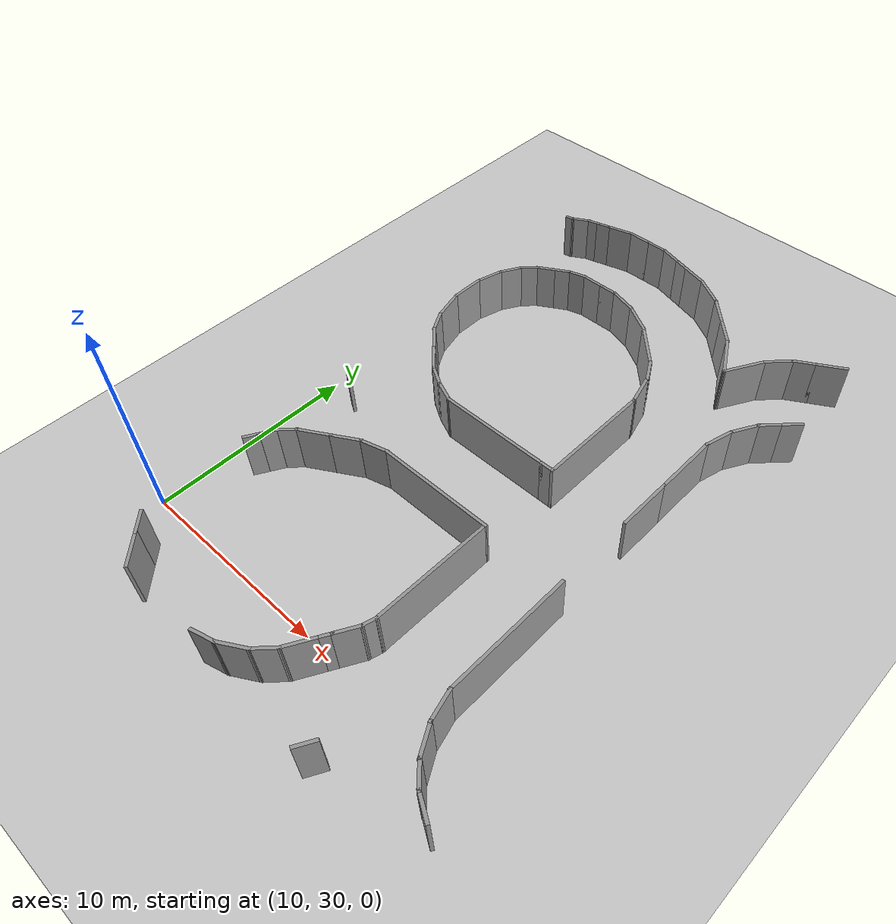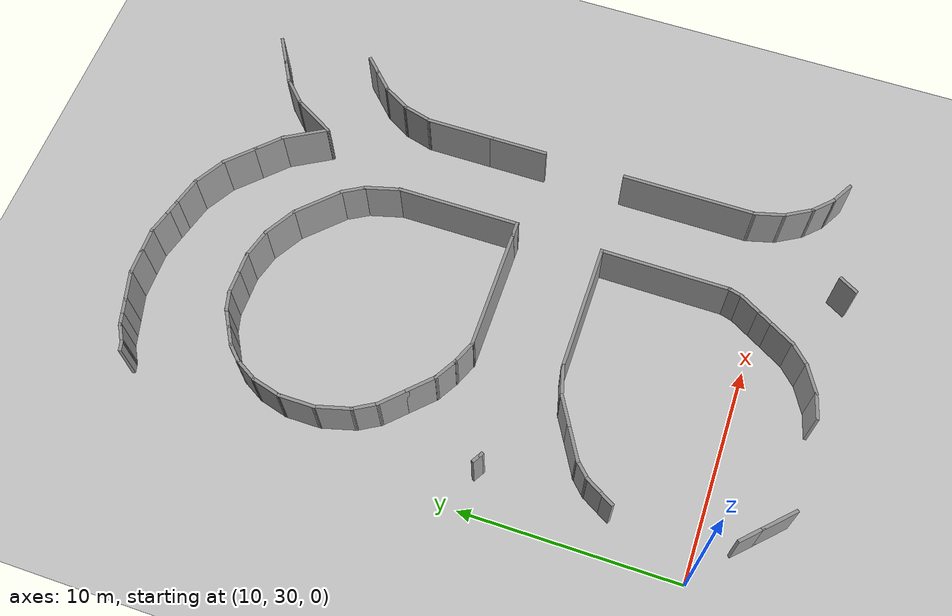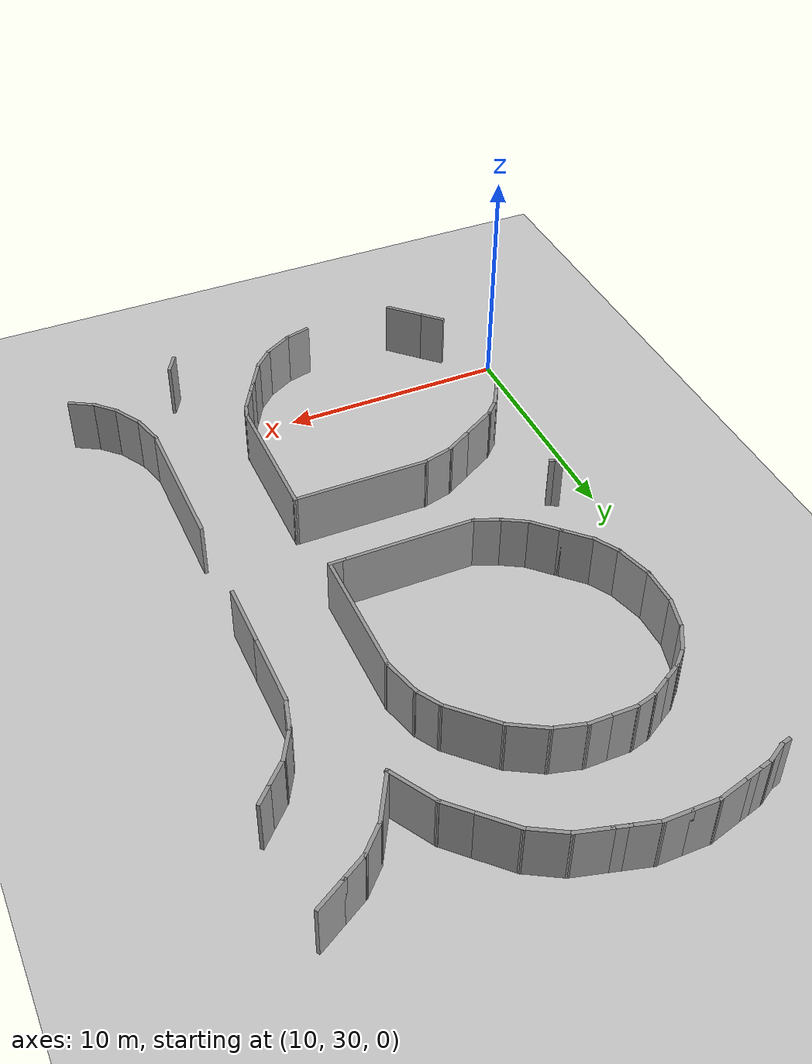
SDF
<sdf version="1.7">
 <world name="default">
  <model name="ground_plane">
   <static>1</static>
   <link name="link">
    <collision name="collision">
     <geometry><plane><normal>0 0 1</normal><size>100 100</size></plane></geometry>
     <surface><friction><ode><mu>100</mu><mu2>50</mu2></ode></friction></surface>
    </collision>
    <visual name="visual">
     <cast_shadows>0</cast_shadows>
     <geometry><plane><normal>0 0 1</normal><size>100 100</size></plane></geometry>
     <material>
      <script><uri>file://media/materials/scripts/gazebo.material</uri><name>Gazebo/Grey</name></script>
     </material>
    </visual>
   </link>
  </model>
  <model name="map4-otto">
   <pose>24.785 39.2572 0 0 -0 0</pose>
   <link name="Wall_0">
    <collision name="Wall_0_Collision">
     <geometry><box><size>5.75 0.15 2.5</size></box></geometry>
     <pose>0 0 1.25 0 -0 0</pose>
    </collision>
    <visual name="Wall_0_Visual">
     <pose>0 0 1.25 0 -0 0</pose>
     <geometry><box><size>5.75 0.15 2.5</size></box></geometry>
     <material>
      <script><uri>file://media/materials/scripts/gazebo.material</uri><name>Gazebo/Grey</name></script>
      <ambient>1 1 1 1</ambient>
     </material>
     <meta><layer>0</layer></meta>
    </visual>
    <pose>-5.42936 2.24258 0 0 -0 0</pose>
   </link>
   <link name="Wall_1">
    <collision name="Wall_1_Collision">
     <geometry><box><size>0.75 0.15 2.5</size></box></geometry>
     <pose>0 0 1.25 0 -0 0</pose>
    </collision>
    <visual name="Wall_1_Visual">
     <pose>0 0 1.25 0 -0 0</pose>
     <geometry><box><size>0.75 0.15 2.5</size></box></geometry>
     <material>
      <script><uri>file://media/materials/scripts/gazebo.material</uri><name>Gazebo/Grey</name></script>
      <ambient>1 1 1 1</ambient>
     </material>
     <meta><layer>0</layer></meta>
    </visual>
    <pose>-2.32936 2.24258 0 0 -0 0</pose>
   </link>
   <link name="Wall_10">
    <collision name="Wall_10_Collision">
     <geometry><box><size>1.5 0.15 2.5</size></box></geometry>
     <pose>0 0 1.25 0 -0 0</pose>
    </collision>
    <visual name="Wall_10_Visual">
     <pose>0 0 1.25 0 -0 0</pose>
     <geometry><box><size>1.5 0.15 2.5</size></box></geometry>
     <material>
      <script><uri>file://media/materials/scripts/gazebo.material</uri><name>Gazebo/Grey</name></script>
      <ambient>1 1 1 1</ambient>
     </material>
     <meta><layer>0</layer></meta>
    </visual>
    <pose>-6.69281 12.9771 0 0 -0 2.87979</pose>
   </link>
   <link name="Wall_104">
    <collision name="Wall_104_Collision">
     <geometry><box><size>2.25 0.15 2.5</size></box></geometry>
     <pose>0 0 1.25 0 -0 0</pose>
    </collision>
    <visual name="Wall_104_Visual">
     <pose>0 0 1.25 0 -0 0</pose>
     <geometry><box><size>2.25 0.15 2.5</size></box></geometry>
     <material>
      <script><uri>file://media/materials/scripts/gazebo.material</uri><name>Gazebo/Grey</name></script>
      <ambient>1 1 1 1</ambient>
     </material>
     <meta><layer>0</layer></meta>
    </visual>
    <pose>-0.63122 13.0957 0 0 -0 2.0944</pose>
   </link>
   <link name="Wall_105">
    <collision name="Wall_105_Collision">
     <geometry><box><size>1.5 0.15 2.5</size></box></geometry>
     <pose>0 0 1.25 0 -0 0</pose>
    </collision>
    <visual name="Wall_105_Visual">
     <pose>0 0 1.25 0 -0 0</pose>
     <geometry><box><size>1.5 0.15 2.5</size></box></geometry>
     <material>
      <script><uri>file://media/materials/scripts/gazebo.material</uri><name>Gazebo/Grey</name></script>
      <ambient>1 1 1 1</ambient>
     </material>
     <meta><layer>0</layer></meta>
    </visual>
    <pose>-1.63352 14.4823 0 0 -0 2.35619</pose>
   </link>
   <link name="Wall_106">
    <collision name="Wall_106_Collision">
     <geometry><box><size>1.75 0.15 2.5</size></box></geometry>
     <pose>0 0 1.25 0 -0 0</pose>
    </collision>
    <visual name="Wall_106_Visual">
     <pose>0 0 1.25 0 -0 0</pose>
     <geometry><box><size>1.75 0.15 2.5</size></box></geometry>
     <material>
      <script><uri>file://media/materials/scripts/gazebo.material</uri><name>Gazebo/Grey</name></script>
      <ambient>1 1 1 1</ambient>
     </material>
     <meta><layer>0</layer></meta>
    </visual>
    <pose>-2.6765 15.5253 0 0 -0 2.35619</pose>
   </link>
   <link name="Wall_107">
    <collision name="Wall_107_Collision">
     <geometry><box><size>1.75 0.15 2.5</size></box></geometry>
     <pose>0 0 1.25 0 -0 0</pose>
    </collision>
    <visual name="Wall_107_Visual">
     <pose>0 0 1.25 0 -0 0</pose>
     <geometry><box><size>1.75 0.15 2.5</size></box></geometry>
     <material>
      <script><uri>file://media/materials/scripts/gazebo.material</uri><name>Gazebo/Grey</name></script>
      <ambient>1 1 1 1</ambient>
     </material>
     <meta><layer>0</layer></meta>
    </visual>
    <pose>-3.93501 16.491 0 0 -0 2.61799</pose>
   </link>
   <link name="Wall_108">
    <collision name="Wall_108_Collision">
     <geometry><box><size>1.5 0.15 2.5</size></box></geometry>
     <pose>0 0 1.25 0 -0 0</pose>
    </collision>
    <visual name="Wall_108_Visual">
     <pose>0 0 1.25 0 -0 0</pose>
     <geometry><box><size>1.5 0.15 2.5</size></box></geometry>
     <material>
      <script><uri>file://media/materials/scripts/gazebo.material</uri><name>Gazebo/Grey</name></script>
      <ambient>1 1 1 1</ambient>
     </material>
     <meta><layer>0</layer></meta>
    </visual>
    <pose>-5.27983 17.0657 0 0 -0 2.87979</pose>
   </link>
   <link name="Wall_109">
    <collision name="Wall_109_Collision">
     <geometry><box><size>0.75 0.15 2.5</size></box></geometry>
     <pose>0 0 1.25 0 -0 0</pose>
    </collision>
    <visual name="Wall_109_Visual">
     <pose>0 0 1.25 0 -0 0</pose>
     <geometry><box><size>0.75 0.15 2.5</size></box></geometry>
     <material>
      <script><uri>file://media/materials/scripts/gazebo.material</uri><name>Gazebo/Grey</name></script>
      <ambient>1 1 1 1</ambient>
     </material>
     <meta><layer>0</layer></meta>
    </visual>
    <pose>-6.2216 17.318 0 0 -0 2.87979</pose>
   </link>
   <link name="Wall_11">
    <collision name="Wall_11_Collision">
     <geometry><box><size>1 0.15 2.5</size></box></geometry>
     <pose>0 0 1.25 0 -0 0</pose>
    </collision>
    <visual name="Wall_11_Visual">
     <pose>0 0 1.25 0 -0 0</pose>
     <geometry><box><size>1 0.15 2.5</size></box></geometry>
     <material>
      <script><uri>file://media/materials/scripts/gazebo.material</uri><name>Gazebo/Grey</name></script>
      <ambient>1 1 1 1</ambient>
     </material>
     <meta><layer>0</layer></meta>
    </visual>
    <pose>-7.76981 13.1518 0 0 -0 3.14159</pose>
   </link>
   <link name="Wall_110">
    <collision name="Wall_110_Collision">
     <geometry><box><size>1.25 0.15 2.5</size></box></geometry>
     <pose>0 0 1.25 0 -0 0</pose>
    </collision>
    <visual name="Wall_110_Visual">
     <pose>0 0 1.25 0 -0 0</pose>
     <geometry><box><size>1.25 0.15 2.5</size></box></geometry>
     <material>
      <script><uri>file://media/materials/scripts/gazebo.material</uri><name>Gazebo/Grey</name></script>
      <ambient>1 1 1 1</ambient>
     </material>
     <meta><layer>0</layer></meta>
    </visual>
    <pose>-7.04264 17.538 0 0 -0 2.87979</pose>
   </link>
   <link name="Wall_111">
    <collision name="Wall_111_Collision">
     <geometry><box><size>1.25 0.15 2.5</size></box></geometry>
     <pose>0 0 1.25 0 -0 0</pose>
    </collision>
    <visual name="Wall_111_Visual">
     <pose>0 0 1.25 0 -0 0</pose>
     <geometry><box><size>1.25 0.15 2.5</size></box></geometry>
     <material>
      <script><uri>file://media/materials/scripts/gazebo.material</uri><name>Gazebo/Grey</name></script>
      <ambient>1 1 1 1</ambient>
     </material>
     <meta><layer>0</layer></meta>
    </visual>
    <pose>-8.1239 17.6804 0 0 -0 3.14159</pose>
   </link>
   <link name="Wall_112">
    <collision name="Wall_112_Collision">
     <geometry><box><size>1.25 0.15 2.5</size></box></geometry>
     <pose>0 0 1.25 0 -0 0</pose>
    </collision>
    <visual name="Wall_112_Visual">
     <pose>0 0 1.25 0 -0 0</pose>
     <geometry><box><size>1.25 0.15 2.5</size></box></geometry>
     <material>
      <script><uri>file://media/materials/scripts/gazebo.material</uri><name>Gazebo/Grey</name></script>
      <ambient>1 1 1 1</ambient>
     </material>
     <meta><layer>0</layer></meta>
    </visual>
    <pose>-9.2239 17.6804 0 0 -0 3.14159</pose>
   </link>
   <link name="Wall_113">
    <collision name="Wall_113_Collision">
     <geometry><box><size>1.5 0.15 2.5</size></box></geometry>
     <pose>0 0 1.25 0 -0 0</pose>
    </collision>
    <visual name="Wall_113_Visual">
     <pose>0 0 1.25 0 -0 0</pose>
     <geometry><box><size>1.5 0.15 2.5</size></box></geometry>
     <material>
      <script><uri>file://media/materials/scripts/gazebo.material</uri><name>Gazebo/Grey</name></script>
      <ambient>1 1 1 1</ambient>
     </material>
     <meta><layer>0</layer></meta>
    </visual>
    <pose>-10.4259 17.5057 0 0 -0 -2.87979</pose>
   </link>
   <link name="Wall_114">
    <collision name="Wall_114_Collision">
     <geometry><box><size>0.75 0.15 2.5</size></box></geometry>
     <pose>0 0 1.25 0 -0 0</pose>
    </collision>
    <visual name="Wall_114_Visual">
     <pose>0 0 1.25 0 -0 0</pose>
     <geometry><box><size>0.75 0.15 2.5</size></box></geometry>
     <material>
      <script><uri>file://media/materials/scripts/gazebo.material</uri><name>Gazebo/Grey</name></script>
      <ambient>1 1 1 1</ambient>
     </material>
     <meta><layer>0</layer></meta>
    </visual>
    <pose>-11.3677 17.2533 0 0 -0 -2.87979</pose>
   </link>
   <link name="Wall_115">
    <collision name="Wall_115_Collision">
     <geometry><box><size>0.75 0.15 2.5</size></box></geometry>
     <pose>0 0 1.25 0 -0 0</pose>
    </collision>
    <visual name="Wall_115_Visual">
     <pose>0 0 1.25 0 -0 0</pose>
     <geometry><box><size>0.75 0.15 2.5</size></box></geometry>
     <material>
      <script><uri>file://media/materials/scripts/gazebo.material</uri><name>Gazebo/Grey</name></script>
      <ambient>1 1 1 1</ambient>
     </material>
     <meta><layer>0</layer></meta>
    </visual>
    <pose>-11.9472 17.0981 0 0 -0 -2.87979</pose>
   </link>
   <link name="Wall_116">
    <collision name="Wall_116_Collision">
     <geometry><box><size>1 0.15 2.5</size></box></geometry>
     <pose>0 0 1.25 0 -0 0</pose>
    </collision>
    <visual name="Wall_116_Visual">
     <pose>0 0 1.25 0 -0 0</pose>
     <geometry><box><size>1 0.15 2.5</size></box></geometry>
     <material>
      <script><uri>file://media/materials/scripts/gazebo.material</uri><name>Gazebo/Grey</name></script>
      <ambient>1 1 1 1</ambient>
     </material>
     <meta><layer>0</layer></meta>
    </visual>
    <pose>-12.6051 16.8079 0 0 -0 -2.61799</pose>
   </link>
   <link name="Wall_117">
    <collision name="Wall_117_Collision">
     <geometry><box><size>0.5 0.15 2.5</size></box></geometry>
     <pose>0 0 1.25 0 -0 0</pose>
    </collision>
    <visual name="Wall_117_Visual">
     <pose>0 0 1.25 0 -0 0</pose>
     <geometry><box><size>0.5 0.15 2.5</size></box></geometry>
     <material>
      <script><uri>file://media/materials/scripts/gazebo.material</uri><name>Gazebo/Grey</name></script>
      <ambient>1 1 1 1</ambient>
     </material>
     <meta><layer>0</layer></meta>
    </visual>
    <pose>-13.1422 16.5501 0 0 -0 -2.87979</pose>
   </link>
   <link name="Wall_12">
    <collision name="Wall_12_Collision">
     <geometry><box><size>1.25 0.15 2.5</size></box></geometry>
     <pose>0 0 1.25 0 -0 0</pose>
    </collision>
    <visual name="Wall_12_Visual">
     <pose>0 0 1.25 0 -0 0</pose>
     <geometry><box><size>1.25 0.15 2.5</size></box></geometry>
     <material>
      <script><uri>file://media/materials/scripts/gazebo.material</uri><name>Gazebo/Grey</name></script>
      <ambient>1 1 1 1</ambient>
     </material>
     <meta><layer>0</layer></meta>
    </visual>
    <pose>-8.74481 13.1518 0 0 -0 3.14159</pose>
   </link>
   <link name="Wall_13">
    <collision name="Wall_13_Collision">
     <geometry><box><size>1 0.15 2.5</size></box></geometry>
     <pose>0 0 1.25 0 -0 0</pose>
    </collision>
    <visual name="Wall_13_Visual">
     <pose>0 0 1.25 0 -0 0</pose>
     <geometry><box><size>1 0.15 2.5</size></box></geometry>
     <material>
      <script><uri>file://media/materials/scripts/gazebo.material</uri><name>Gazebo/Grey</name></script>
      <ambient>1 1 1 1</ambient>
     </material>
     <meta><layer>0</layer></meta>
    </visual>
    <pose>-9.70533 13.0418 0 0 -0 -2.87979</pose>
   </link>
   <link name="Wall_14">
    <collision name="Wall_14_Collision">
     <geometry><box><size>1 0.15 2.5</size></box></geometry>
     <pose>0 0 1.25 0 -0 0</pose>
    </collision>
    <visual name="Wall_14_Visual">
     <pose>0 0 1.25 0 -0 0</pose>
     <geometry><box><size>1 0.15 2.5</size></box></geometry>
     <material>
      <script><uri>file://media/materials/scripts/gazebo.material</uri><name>Gazebo/Grey</name></script>
      <ambient>1 1 1 1</ambient>
     </material>
     <meta><layer>0</layer></meta>
    </visual>
    <pose>-10.4839 12.7193 0 0 -0 -2.61799</pose>
   </link>
   <link name="Wall_141">
    <collision name="Wall_141_Collision">
     <geometry><box><size>0.5 0.15 2.5</size></box></geometry>
     <pose>0 0 1.25 0 -0 0</pose>
    </collision>
    <visual name="Wall_141_Visual">
     <pose>0 0 1.25 0 -0 0</pose>
     <geometry><box><size>0.5 0.15 2.5</size></box></geometry>
     <material>
      <script><uri>file://media/materials/scripts/gazebo.material</uri><name>Gazebo/Grey</name></script>
      <ambient>1 1 1 1</ambient>
     </material>
     <meta><layer>0</layer></meta>
    </visual>
    <pose>-13.05 0.392899 0 0 -0 -0.523599</pose>
   </link>
   <link name="Wall_142">
    <collision name="Wall_142_Collision">
     <geometry><box><size>0.25 0.15 2.5</size></box></geometry>
     <pose>0 0 1.25 0 -0 0</pose>
    </collision>
    <visual name="Wall_142_Visual">
     <pose>0 0 1.25 0 -0 0</pose>
     <geometry><box><size>0.25 0.15 2.5</size></box></geometry>
     <material>
      <script><uri>file://media/materials/scripts/gazebo.material</uri><name>Gazebo/Grey</name></script>
      <ambient>1 1 1 1</ambient>
     </material>
     <meta><layer>0</layer></meta>
    </visual>
    <pose>-12.8551 0.280399 0 0 -0 -0.523599</pose>
   </link>
   <link name="Wall_15">
    <collision name="Wall_15_Collision">
     <geometry><box><size>1 0.15 2.5</size></box></geometry>
     <pose>0 0 1.25 0 -0 0</pose>
    </collision>
    <visual name="Wall_15_Visual">
     <pose>0 0 1.25 0 -0 0</pose>
     <geometry><box><size>1 0.15 2.5</size></box></geometry>
     <material>
      <script><uri>file://media/materials/scripts/gazebo.material</uri><name>Gazebo/Grey</name></script>
      <ambient>1 1 1 1</ambient>
     </material>
     <meta><layer>0</layer></meta>
    </visual>
    <pose>-11.22 12.2943 0 0 -0 -2.61799</pose>
   </link>
   <link name="Wall_16">
    <collision name="Wall_16_Collision">
     <geometry><box><size>1 0.15 2.5</size></box></geometry>
     <pose>0 0 1.25 0 -0 0</pose>
    </collision>
    <visual name="Wall_16_Visual">
     <pose>0 0 1.25 0 -0 0</pose>
     <geometry><box><size>1 0.15 2.5</size></box></geometry>
     <material>
      <script><uri>file://media/materials/scripts/gazebo.material</uri><name>Gazebo/Grey</name></script>
      <ambient>1 1 1 1</ambient>
     </material>
     <meta><layer>0</layer></meta>
    </visual>
    <pose>-11.8886 11.7813 0 0 -0 -2.35619</pose>
   </link>
   <link name="Wall_17">
    <collision name="Wall_17_Collision">
     <geometry><box><size>1.25 0.15 2.5</size></box></geometry>
     <pose>0 0 1.25 0 -0 0</pose>
    </collision>
    <visual name="Wall_17_Visual">
     <pose>0 0 1.25 0 -0 0</pose>
     <geometry><box><size>1.25 0.15 2.5</size></box></geometry>
     <material>
      <script><uri>file://media/materials/scripts/gazebo.material</uri><name>Gazebo/Grey</name></script>
      <ambient>1 1 1 1</ambient>
     </material>
     <meta><layer>0</layer></meta>
    </visual>
    <pose>-12.4641 11.0044 0 0 -0 -2.0944</pose>
   </link>
   <link name="Wall_178">
    <collision name="Wall_178_Collision">
     <geometry><box><size>1 0.15 2.5</size></box></geometry>
     <pose>0 0 1.25 0 -0 0</pose>
    </collision>
    <visual name="Wall_178_Visual">
     <pose>0 0 1.25 0 -0 0</pose>
     <geometry><box><size>1 0.15 2.5</size></box></geometry>
     <material>
      <script><uri>file://media/materials/scripts/gazebo.material</uri><name>Gazebo/Grey</name></script>
      <ambient>1 1 1 1</ambient>
     </material>
     <meta><layer>0</layer></meta>
    </visual>
    <pose>-0.306298 -12.5487 0 0 -0 1.0472</pose>
   </link>
   <link name="Wall_18">
    <collision name="Wall_18_Collision">
     <geometry><box><size>1.5 0.15 2.5</size></box></geometry>
     <pose>0 0 1.25 0 -0 0</pose>
    </collision>
    <visual name="Wall_18_Visual">
     <pose>0 0 1.25 0 -0 0</pose>
     <geometry><box><size>1.5 0.15 2.5</size></box></geometry>
     <material>
      <script><uri>file://media/materials/scripts/gazebo.material</uri><name>Gazebo/Grey</name></script>
      <ambient>1 1 1 1</ambient>
     </material>
     <meta><layer>0</layer></meta>
    </visual>
    <pose>-12.9138 9.87613 0 0 -0 -1.8326</pose>
   </link>
   <link name="Wall_19">
    <collision name="Wall_19_Collision">
     <geometry><box><size>1.75 0.15 2.5</size></box></geometry>
     <pose>0 0 1.25 0 -0 0</pose>
    </collision>
    <visual name="Wall_19_Visual">
     <pose>0 0 1.25 0 -0 0</pose>
     <geometry><box><size>1.75 0.15 2.5</size></box></geometry>
     <material>
      <script><uri>file://media/materials/scripts/gazebo.material</uri><name>Gazebo/Grey</name></script>
      <ambient>1 1 1 1</ambient>
     </material>
     <meta><layer>0</layer></meta>
    </visual>
    <pose>-13.0885 8.42413 0 0 -0 -1.5708</pose>
   </link>
   <link name="Wall_20">
    <collision name="Wall_20_Collision">
     <geometry><box><size>1.75 0.15 2.5</size></box></geometry>
     <pose>0 0 1.25 0 -0 0</pose>
    </collision>
    <visual name="Wall_20_Visual">
     <pose>0 0 1.25 0 -0 0</pose>
     <geometry><box><size>1.75 0.15 2.5</size></box></geometry>
     <material>
      <script><uri>file://media/materials/scripts/gazebo.material</uri><name>Gazebo/Grey</name></script>
      <ambient>1 1 1 1</ambient>
     </material>
     <meta><layer>0</layer></meta>
    </visual>
    <pose>-12.8815 6.85139 0 0 -0 -1.309</pose>
   </link>
   <link name="Wall_21">
    <collision name="Wall_21_Collision">
     <geometry><box><size>1.25 0.15 2.5</size></box></geometry>
     <pose>0 0 1.25 0 -0 0</pose>
    </collision>
    <visual name="Wall_21_Visual">
     <pose>0 0 1.25 0 -0 0</pose>
     <geometry><box><size>1.25 0.15 2.5</size></box></geometry>
     <material>
      <script><uri>file://media/materials/scripts/gazebo.material</uri><name>Gazebo/Grey</name></script>
      <ambient>1 1 1 1</ambient>
     </material>
     <meta><layer>0</layer></meta>
    </visual>
    <pose>-12.3994 5.60234 0 0 -0 -1.0472</pose>
   </link>
   <link name="Wall_22">
    <collision name="Wall_22_Collision">
     <geometry><box><size>1.5 0.15 2.5</size></box></geometry>
     <pose>0 0 1.25 0 -0 0</pose>
    </collision>
    <visual name="Wall_22_Visual">
     <pose>0 0 1.25 0 -0 0</pose>
     <geometry><box><size>1.5 0.15 2.5</size></box></geometry>
     <material>
      <script><uri>file://media/materials/scripts/gazebo.material</uri><name>Gazebo/Grey</name></script>
      <ambient>1 1 1 1</ambient>
     </material>
     <meta><layer>0</layer></meta>
    </visual>
    <pose>-11.6471 4.64873 0 0 -0 -0.785398</pose>
   </link>
   <link name="Wall_223">
    <collision name="Wall_223_Collision">
     <geometry><box><size>2.25 0.15 2.5</size></box></geometry>
     <pose>0 0 1.25 0 -0 0</pose>
    </collision>
    <visual name="Wall_223_Visual">
     <pose>0 0 1.25 0 -0 0</pose>
     <geometry><box><size>2.25 0.15 2.5</size></box></geometry>
     <material>
      <script><uri>file://media/materials/scripts/gazebo.material</uri><name>Gazebo/Grey</name></script>
      <ambient>1 1 1 1</ambient>
     </material>
     <meta><layer>0</layer></meta>
    </visual>
    <pose>0.41878 13.0957 0 0 -0 1.0472</pose>
   </link>
   <link name="Wall_224">
    <collision name="Wall_224_Collision">
     <geometry><box><size>1.5 0.15 2.5</size></box></geometry>
     <pose>0 0 1.25 0 -0 0</pose>
    </collision>
    <visual name="Wall_224_Visual">
     <pose>0 0 1.25 0 -0 0</pose>
     <geometry><box><size>1.5 0.15 2.5</size></box></geometry>
     <material>
      <script><uri>file://media/materials/scripts/gazebo.material</uri><name>Gazebo/Grey</name></script>
      <ambient>1 1 1 1</ambient>
     </material>
     <meta><layer>0</layer></meta>
    </visual>
    <pose>1.42108 14.4823 0 0 -0 0.785398</pose>
   </link>
   <link name="Wall_225">
    <collision name="Wall_225_Collision">
     <geometry><box><size>1.25 0.15 2.5</size></box></geometry>
     <pose>0 0 1.25 0 -0 0</pose>
    </collision>
    <visual name="Wall_225_Visual">
     <pose>0 0 1.25 0 -0 0</pose>
     <geometry><box><size>1.25 0.15 2.5</size></box></geometry>
     <material>
      <script><uri>file://media/materials/scripts/gazebo.material</uri><name>Gazebo/Grey</name></script>
      <ambient>1 1 1 1</ambient>
     </material>
     <meta><layer>0</layer></meta>
    </visual>
    <pose>2.37469 15.2346 0 0 -0 0.523599</pose>
   </link>
   <link name="Wall_226">
    <collision name="Wall_226_Collision">
     <geometry><box><size>1.5 0.15 2.5</size></box></geometry>
     <pose>0 0 1.25 0 -0 0</pose>
    </collision>
    <visual name="Wall_226_Visual">
     <pose>0 0 1.25 0 -0 0</pose>
     <geometry><box><size>1.5 0.15 2.5</size></box></geometry>
     <material>
      <script><uri>file://media/materials/scripts/gazebo.material</uri><name>Gazebo/Grey</name></script>
      <ambient>1 1 1 1</ambient>
     </material>
     <meta><layer>0</layer></meta>
    </visual>
    <pose>3.43557 15.8471 0 0 -0 0.523599</pose>
   </link>
   <link name="Wall_23">
    <collision name="Wall_23_Collision">
     <geometry><box><size>1.5 0.15 2.5</size></box></geometry>
     <pose>0 0 1.25 0 -0 0</pose>
    </collision>
    <visual name="Wall_23_Visual">
     <pose>0 0 1.25 0 -0 0</pose>
     <geometry><box><size>1.5 0.15 2.5</size></box></geometry>
     <material>
      <script><uri>file://media/materials/scripts/gazebo.material</uri><name>Gazebo/Grey</name></script>
      <ambient>1 1 1 1</ambient>
     </material>
     <meta><layer>0</layer></meta>
    </visual>
    <pose>-10.6925 3.69413 0 0 -0 -0.785398</pose>
   </link>
   <link name="Wall_24">
    <collision name="Wall_24_Collision">
     <geometry><box><size>1.25 0.15 2.5</size></box></geometry>
     <pose>0 0 1.25 0 -0 0</pose>
    </collision>
    <visual name="Wall_24_Visual">
     <pose>0 0 1.25 0 -0 0</pose>
     <geometry><box><size>1.25 0.15 2.5</size></box></geometry>
     <material>
      <script><uri>file://media/materials/scripts/gazebo.material</uri><name>Gazebo/Grey</name></script>
      <ambient>1 1 1 1</ambient>
     </material>
     <meta><layer>0</layer></meta>
    </visual>
    <pose>-9.73893 2.94183 0 0 -0 -0.523599</pose>
   </link>
   <link name="Wall_25">
    <collision name="Wall_25_Collision">
     <geometry><box><size>1.26696 0.15 2.5</size></box></geometry>
     <pose>0 0 1.25 0 -0 0</pose>
    </collision>
    <visual name="Wall_25_Visual">
     <pose>0 0 1.25 0 -0 0</pose>
     <geometry><box><size>1.26696 0.15 2.5</size></box></geometry>
     <material>
      <script><uri>file://media/materials/scripts/gazebo.material</uri><name>Gazebo/Grey</name></script>
      <ambient>1 1 1 1</ambient>
     </material>
     <meta><layer>0</layer></meta>
    </visual>
    <pose>-8.74598 2.45471 0 0 -0 -0.389611</pose>
   </link>
   <link name="Wall_27">
    <collision name="Wall_27_Collision">
     <geometry><box><size>2.75 0.15 2.5</size></box></geometry>
     <pose>0 0 1.25 0 -0 0</pose>
    </collision>
    <visual name="Wall_27_Visual">
     <pose>0 0 1.25 0 -0 0</pose>
     <geometry><box><size>2.75 0.15 2.5</size></box></geometry>
     <material>
      <script><uri>file://media/materials/scripts/gazebo.material</uri><name>Gazebo/Grey</name></script>
      <ambient>1 1 1 1</ambient>
     </material>
     <meta><layer>0</layer></meta>
    </visual>
    <pose>1.92442 3.47491 0 0 -0 1.5708</pose>
   </link>
   <link name="Wall_28">
    <collision name="Wall_28_Collision">
     <geometry><box><size>3.25 0.15 2.5</size></box></geometry>
     <pose>0 0 1.25 0 -0 0</pose>
    </collision>
    <visual name="Wall_28_Visual">
     <pose>0 0 1.25 0 -0 0</pose>
     <geometry><box><size>3.25 0.15 2.5</size></box></geometry>
     <material>
      <script><uri>file://media/materials/scripts/gazebo.material</uri><name>Gazebo/Grey</name></script>
      <ambient>1 1 1 1</ambient>
     </material>
     <meta><layer>0</layer></meta>
    </visual>
    <pose>1.92442 6.32491 0 0 -0 1.5708</pose>
   </link>
   <link name="Wall_29">
    <collision name="Wall_29_Collision">
     <geometry><box><size>1.5 0.15 2.5</size></box></geometry>
     <pose>0 0 1.25 0 -0 0</pose>
    </collision>
    <visual name="Wall_29_Visual">
     <pose>0 0 1.25 0 -0 0</pose>
     <geometry><box><size>1.5 0.15 2.5</size></box></geometry>
     <material>
      <script><uri>file://media/materials/scripts/gazebo.material</uri><name>Gazebo/Grey</name></script>
      <ambient>1 1 1 1</ambient>
     </material>
     <meta><layer>0</layer></meta>
    </visual>
    <pose>2.09913 8.52691 0 0 -0 1.309</pose>
   </link>
   <link name="Wall_30">
    <collision name="Wall_30_Collision">
     <geometry><box><size>1.5 0.15 2.5</size></box></geometry>
     <pose>0 0 1.25 0 -0 0</pose>
    </collision>
    <visual name="Wall_30_Visual">
     <pose>0 0 1.25 0 -0 0</pose>
     <geometry><box><size>1.5 0.15 2.5</size></box></geometry>
     <material>
      <script><uri>file://media/materials/scripts/gazebo.material</uri><name>Gazebo/Grey</name></script>
      <ambient>1 1 1 1</ambient>
     </material>
     <meta><layer>0</layer></meta>
    </visual>
    <pose>2.61133 9.76348 0 0 -0 1.0472</pose>
   </link>
   <link name="Wall_31">
    <collision name="Wall_31_Collision">
     <geometry><box><size>1.25 0.15 2.5</size></box></geometry>
     <pose>0 0 1.25 0 -0 0</pose>
    </collision>
    <visual name="Wall_31_Visual">
     <pose>0 0 1.25 0 -0 0</pose>
     <geometry><box><size>1.25 0.15 2.5</size></box></geometry>
     <material>
      <script><uri>file://media/materials/scripts/gazebo.material</uri><name>Gazebo/Grey</name></script>
      <ambient>1 1 1 1</ambient>
     </material>
     <meta><layer>0</layer></meta>
    </visual>
    <pose>3.33774 10.737 0 0 -0 0.785398</pose>
   </link>
   <link name="Wall_32">
    <collision name="Wall_32_Collision">
     <geometry><box><size>1 0.15 2.5</size></box></geometry>
     <pose>0 0 1.25 0 -0 0</pose>
    </collision>
    <visual name="Wall_32_Visual">
     <pose>0 0 1.25 0 -0 0</pose>
     <geometry><box><size>1 0.15 2.5</size></box></geometry>
     <material>
      <script><uri>file://media/materials/scripts/gazebo.material</uri><name>Gazebo/Grey</name></script>
      <ambient>1 1 1 1</ambient>
     </material>
     <meta><layer>0</layer></meta>
    </visual>
    <pose>4.02717 11.4264 0 0 -0 0.785398</pose>
   </link>
   <link name="Wall_5">
    <collision name="Wall_5_Collision">
     <geometry><box><size>5.75 0.15 2.5</size></box></geometry>
     <pose>0 0 1.25 0 -0 0</pose>
    </collision>
    <visual name="Wall_5_Visual">
     <pose>0 0 1.25 0 -0 0</pose>
     <geometry><box><size>5.75 0.15 2.5</size></box></geometry>
     <material>
      <script><uri>file://media/materials/scripts/gazebo.material</uri><name>Gazebo/Grey</name></script>
      <ambient>1 1 1 1</ambient>
     </material>
     <meta><layer>0</layer></meta>
    </visual>
    <pose>-2.02936 5.04258 0 0 -0 1.5708</pose>
   </link>
   <link name="Wall_50">
    <collision name="Wall_50_Collision">
     <geometry><box><size>6 0.15 2.5</size></box></geometry>
     <pose>0 0 1.25 0 -0 0</pose>
    </collision>
    <visual name="Wall_50_Visual">
     <pose>0 0 1.25 0 -0 0</pose>
     <geometry><box><size>6 0.15 2.5</size></box></geometry>
     <material>
      <script><uri>file://media/materials/scripts/gazebo.material</uri><name>Gazebo/Grey</name></script>
      <ambient>1 1 1 1</ambient>
     </material>
     <meta><layer>0</layer></meta>
    </visual>
    <pose>-5.06002 -1.77018 0 0 -0 3.14159</pose>
   </link>
   <link name="Wall_51">
    <collision name="Wall_51_Collision">
     <geometry><box><size>1.5 0.15 2.5</size></box></geometry>
     <pose>0 0 1.25 0 -0 0</pose>
    </collision>
    <visual name="Wall_51_Visual">
     <pose>0 0 1.25 0 -0 0</pose>
     <geometry><box><size>1.5 0.15 2.5</size></box></geometry>
     <material>
      <script><uri>file://media/materials/scripts/gazebo.material</uri><name>Gazebo/Grey</name></script>
      <ambient>1 1 1 1</ambient>
     </material>
     <meta><layer>0</layer></meta>
    </visual>
    <pose>-8.63702 -1.94489 0 0 -0 -2.87979</pose>
   </link>
   <link name="Wall_52">
    <collision name="Wall_52_Collision">
     <geometry><box><size>1.5 0.15 2.5</size></box></geometry>
     <pose>0 0 1.25 0 -0 0</pose>
    </collision>
    <visual name="Wall_52_Visual">
     <pose>0 0 1.25 0 -0 0</pose>
     <geometry><box><size>1.5 0.15 2.5</size></box></geometry>
     <material>
      <script><uri>file://media/materials/scripts/gazebo.material</uri><name>Gazebo/Grey</name></script>
      <ambient>1 1 1 1</ambient>
     </material>
     <meta><layer>0</layer></meta>
    </visual>
    <pose>-9.87359 -2.45709 0 0 -0 -2.61799</pose>
   </link>
   <link name="Wall_53">
    <collision name="Wall_53_Collision">
     <geometry><box><size>1.75 0.15 2.5</size></box></geometry>
     <pose>0 0 1.25 0 -0 0</pose>
    </collision>
    <visual name="Wall_53_Visual">
     <pose>0 0 1.25 0 -0 0</pose>
     <geometry><box><size>1.75 0.15 2.5</size></box></geometry>
     <material>
      <script><uri>file://media/materials/scripts/gazebo.material</uri><name>Gazebo/Grey</name></script>
      <ambient>1 1 1 1</ambient>
     </material>
     <meta><layer>0</layer></meta>
    </visual>
    <pose>-11.151 -3.19459 0 0 -0 -2.61799</pose>
   </link>
   <link name="Wall_54">
    <collision name="Wall_54_Collision">
     <geometry><box><size>1 0.15 2.5</size></box></geometry>
     <pose>0 0 1.25 0 -0 0</pose>
    </collision>
    <visual name="Wall_54_Visual">
     <pose>0 0 1.25 0 -0 0</pose>
     <geometry><box><size>1 0.15 2.5</size></box></geometry>
     <material>
      <script><uri>file://media/materials/scripts/gazebo.material</uri><name>Gazebo/Grey</name></script>
      <ambient>1 1 1 1</ambient>
     </material>
     <meta><layer>0</layer></meta>
    </visual>
    <pose>-12.1443 -3.89511 0 0 -0 -2.35619</pose>
   </link>
   <link name="Wall_55">
    <collision name="Wall_55_Collision">
     <geometry><box><size>1 0.15 2.5</size></box></geometry>
     <pose>0 0 1.25 0 -0 0</pose>
    </collision>
    <visual name="Wall_55_Visual">
     <pose>0 0 1.25 0 -0 0</pose>
     <geometry><box><size>1 0.15 2.5</size></box></geometry>
     <material>
      <script><uri>file://media/materials/scripts/gazebo.material</uri><name>Gazebo/Grey</name></script>
      <ambient>1 1 1 1</ambient>
     </material>
     <meta><layer>0</layer></meta>
    </visual>
    <pose>-12.6573 -4.56369 0 0 -0 -2.0944</pose>
   </link>
   <link name="Wall_56">
    <collision name="Wall_56_Collision">
     <geometry><box><size>0.75 0.15 2.5</size></box></geometry>
     <pose>0 0 1.25 0 -0 0</pose>
    </collision>
    <visual name="Wall_56_Visual">
     <pose>0 0 1.25 0 -0 0</pose>
     <geometry><box><size>0.75 0.15 2.5</size></box></geometry>
     <material>
      <script><uri>file://media/materials/scripts/gazebo.material</uri><name>Gazebo/Grey</name></script>
      <ambient>1 1 1 1</ambient>
     </material>
     <meta><layer>0</layer></meta>
    </visual>
    <pose>-13.0198 -5.19156 0 0 -0 -2.0944</pose>
   </link>
   <link name="Wall_6">
    <collision name="Wall_6_Collision">
     <geometry><box><size>1.75 0.15 2.5</size></box></geometry>
     <pose>0 0 1.25 0 -0 0</pose>
    </collision>
    <visual name="Wall_6_Visual">
     <pose>0 0 1.25 0 -0 0</pose>
     <geometry><box><size>1.75 0.15 2.5</size></box></geometry>
     <material>
      <script><uri>file://media/materials/scripts/gazebo.material</uri><name>Gazebo/Grey</name></script>
      <ambient>1 1 1 1</ambient>
     </material>
     <meta><layer>0</layer></meta>
    </visual>
    <pose>-2.23641 8.61532 0 0 -0 1.8326</pose>
   </link>
   <link name="Wall_64">
    <collision name="Wall_64_Collision">
     <geometry><box><size>1.25 0.15 2.5</size></box></geometry>
     <pose>0 0 1.25 0 -0 0</pose>
    </collision>
    <visual name="Wall_64_Visual">
     <pose>0 0 1.25 0 -0 0</pose>
     <geometry><box><size>1.25 0.15 2.5</size></box></geometry>
     <material>
      <script><uri>file://media/materials/scripts/gazebo.material</uri><name>Gazebo/Grey</name></script>
      <ambient>1 1 1 1</ambient>
     </material>
     <meta><layer>0</layer></meta>
    </visual>
    <pose>-12.5759 -11.1288 0 0 -0 -0.785398</pose>
   </link>
   <link name="Wall_66">
    <collision name="Wall_66_Collision">
     <geometry><box><size>1.75 0.15 2.5</size></box></geometry>
     <pose>0 0 1.25 0 -0 0</pose>
    </collision>
    <visual name="Wall_66_Visual">
     <pose>0 0 1.25 0 -0 0</pose>
     <geometry><box><size>1.75 0.15 2.5</size></box></geometry>
     <material>
      <script><uri>file://media/materials/scripts/gazebo.material</uri><name>Gazebo/Grey</name></script>
      <ambient>1 1 1 1</ambient>
     </material>
     <meta><layer>0</layer></meta>
    </visual>
    <pose>-11.6213 -12.0834 0 0 -0 -0.785398</pose>
   </link>
   <link name="Wall_7">
    <collision name="Wall_7_Collision">
     <geometry><box><size>1.25 0.15 2.5</size></box></geometry>
     <pose>0 0 1.25 0 -0 0</pose>
    </collision>
    <visual name="Wall_7_Visual">
     <pose>0 0 1.25 0 -0 0</pose>
     <geometry><box><size>1.25 0.15 2.5</size></box></geometry>
     <material>
      <script><uri>file://media/materials/scripts/gazebo.material</uri><name>Gazebo/Grey</name></script>
      <ambient>1 1 1 1</ambient>
     </material>
     <meta><layer>0</layer></meta>
    </visual>
    <pose>-2.71847 9.86438 0 0 -0 2.0944</pose>
   </link>
   <link name="Wall_70">
    <collision name="Wall_70_Collision">
     <geometry><box><size>1.25 0.15 2.5</size></box></geometry>
     <pose>0 0 1.25 0 -0 0</pose>
    </collision>
    <visual name="Wall_70_Visual">
     <pose>0 0 1.25 0 -0 0</pose>
     <geometry><box><size>1.25 0.15 2.5</size></box></geometry>
     <material>
      <script><uri>file://media/materials/scripts/gazebo.material</uri><name>Gazebo/Grey</name></script>
      <ambient>1 1 1 1</ambient>
     </material>
     <meta><layer>0</layer></meta>
    </visual>
    <pose>-6.32491 -12.442 0 0 -0 0.261799</pose>
   </link>
   <link name="Wall_71">
    <collision name="Wall_71_Collision">
     <geometry><box><size>1.5 0.15 2.5</size></box></geometry>
     <pose>0 0 1.25 0 -0 0</pose>
    </collision>
    <visual name="Wall_71_Visual">
     <pose>0 0 1.25 0 -0 0</pose>
     <geometry><box><size>1.5 0.15 2.5</size></box></geometry>
     <material>
      <script><uri>file://media/materials/scripts/gazebo.material</uri><name>Gazebo/Grey</name></script>
      <ambient>1 1 1 1</ambient>
     </material>
     <meta><layer>0</layer></meta>
    </visual>
    <pose>-5.20908 -11.9622 0 0 -0 0.523599</pose>
   </link>
   <link name="Wall_72">
    <collision name="Wall_72_Collision">
     <geometry><box><size>1.25 0.15 2.5</size></box></geometry>
     <pose>0 0 1.25 0 -0 0</pose>
    </collision>
    <visual name="Wall_72_Visual">
     <pose>0 0 1.25 0 -0 0</pose>
     <geometry><box><size>1.25 0.15 2.5</size></box></geometry>
     <material>
      <script><uri>file://media/materials/scripts/gazebo.material</uri><name>Gazebo/Grey</name></script>
      <ambient>1 1 1 1</ambient>
     </material>
     <meta><layer>0</layer></meta>
    </visual>
    <pose>-4.2356 -11.2358 0 0 -0 0.785398</pose>
   </link>
   <link name="Wall_73">
    <collision name="Wall_73_Collision">
     <geometry><box><size>1.5 0.15 2.5</size></box></geometry>
     <pose>0 0 1.25 0 -0 0</pose>
    </collision>
    <visual name="Wall_73_Visual">
     <pose>0 0 1.25 0 -0 0</pose>
     <geometry><box><size>1.5 0.15 2.5</size></box></geometry>
     <material>
      <script><uri>file://media/materials/scripts/gazebo.material</uri><name>Gazebo/Grey</name></script>
      <ambient>1 1 1 1</ambient>
     </material>
     <meta><layer>0</layer></meta>
    </visual>
    <pose>-3.5092 -10.2623 0 0 -0 1.0472</pose>
   </link>
   <link name="Wall_74">
    <collision name="Wall_74_Collision">
     <geometry><box><size>0.75 0.15 2.5</size></box></geometry>
     <pose>0 0 1.25 0 -0 0</pose>
    </collision>
    <visual name="Wall_74_Visual">
     <pose>0 0 1.25 0 -0 0</pose>
     <geometry><box><size>0.75 0.15 2.5</size></box></geometry>
     <material>
      <script><uri>file://media/materials/scripts/gazebo.material</uri><name>Gazebo/Grey</name></script>
      <ambient>1 1 1 1</ambient>
     </material>
     <meta><layer>0</layer></meta>
    </visual>
    <pose>-3.0217 -9.4179 0 0 -0 1.0472</pose>
   </link>
   <link name="Wall_75">
    <collision name="Wall_75_Collision">
     <geometry><box><size>1.25 0.15 2.5</size></box></geometry>
     <pose>0 0 1.25 0 -0 0</pose>
    </collision>
    <visual name="Wall_75_Visual">
     <pose>0 0 1.25 0 -0 0</pose>
     <geometry><box><size>1.25 0.15 2.5</size></box></geometry>
     <material>
      <script><uri>file://media/materials/scripts/gazebo.material</uri><name>Gazebo/Grey</name></script>
      <ambient>1 1 1 1</ambient>
     </material>
     <meta><layer>0</layer></meta>
    </visual>
    <pose>-2.5967 -8.68178 0 0 -0 1.0472</pose>
   </link>
   <link name="Wall_76">
    <collision name="Wall_76_Collision">
     <geometry><box><size>0.75 0.15 2.5</size></box></geometry>
     <pose>0 0 1.25 0 -0 0</pose>
    </collision>
    <visual name="Wall_76_Visual">
     <pose>0 0 1.25 0 -0 0</pose>
     <geometry><box><size>0.75 0.15 2.5</size></box></geometry>
     <material>
      <script><uri>file://media/materials/scripts/gazebo.material</uri><name>Gazebo/Grey</name></script>
      <ambient>1 1 1 1</ambient>
     </material>
     <meta><layer>0</layer></meta>
    </visual>
    <pose>-2.24405 -7.91569 0 0 -0 1.309</pose>
   </link>
   <link name="Wall_77">
    <collision name="Wall_77_Collision">
     <geometry><box><size>6.00581 0.15 2.5</size></box></geometry>
     <pose>0 0 1.25 0 -0 0</pose>
    </collision>
    <visual name="Wall_77_Visual">
     <pose>0 0 1.25 0 -0 0</pose>
     <geometry><box><size>6.00581 0.15 2.5</size></box></geometry>
     <material>
      <script><uri>file://media/materials/scripts/gazebo.material</uri><name>Gazebo/Grey</name></script>
      <ambient>1 1 1 1</ambient>
     </material>
     <meta><layer>0</layer></meta>
    </visual>
    <pose>-2.15071 -4.69805 0 0 -0 1.56544</pose>
   </link>
   <link name="Wall_79">
    <collision name="Wall_79_Collision">
     <geometry><box><size>6.25 0.15 2.5</size></box></geometry>
     <pose>0 0 1.25 0 -0 0</pose>
    </collision>
    <visual name="Wall_79_Visual">
     <pose>0 0 1.25 0 -0 0</pose>
     <geometry><box><size>6.25 0.15 2.5</size></box></geometry>
     <material>
      <script><uri>file://media/materials/scripts/gazebo.material</uri><name>Gazebo/Grey</name></script>
      <ambient>1 1 1 1</ambient>
     </material>
     <meta><layer>0</layer></meta>
    </visual>
    <pose>1.89584 -4.73442 0 0 -0 -1.5708</pose>
   </link>
   <link name="Wall_8">
    <collision name="Wall_8_Collision">
     <geometry><box><size>2.5 0.15 2.5</size></box></geometry>
     <pose>0 0 1.25 0 -0 0</pose>
    </collision>
    <visual name="Wall_8_Visual">
     <pose>0 0 1.25 0 -0 0</pose>
     <geometry><box><size>2.5 0.15 2.5</size></box></geometry>
     <material>
      <script><uri>file://media/materials/scripts/gazebo.material</uri><name>Gazebo/Grey</name></script>
      <ambient>1 1 1 1</ambient>
     </material>
     <meta><layer>0</layer></meta>
    </visual>
    <pose>-3.82432 11.1715 0 0 -0 2.35619</pose>
   </link>
   <link name="Wall_80">
    <collision name="Wall_80_Collision">
     <geometry><box><size>1.5 0.15 2.5</size></box></geometry>
     <pose>0 0 1.25 0 -0 0</pose>
    </collision>
    <visual name="Wall_80_Visual">
     <pose>0 0 1.25 0 -0 0</pose>
     <geometry><box><size>1.5 0.15 2.5</size></box></geometry>
     <material>
      <script><uri>file://media/materials/scripts/gazebo.material</uri><name>Gazebo/Grey</name></script>
      <ambient>1 1 1 1</ambient>
     </material>
     <meta><layer>0</layer></meta>
    </visual>
    <pose>2.07054 -8.43642 0 0 -0 -1.309</pose>
   </link>
   <link name="Wall_81">
    <collision name="Wall_81_Collision">
     <geometry><box><size>1.5 0.15 2.5</size></box></geometry>
     <pose>0 0 1.25 0 -0 0</pose>
    </collision>
    <visual name="Wall_81_Visual">
     <pose>0 0 1.25 0 -0 0</pose>
     <geometry><box><size>1.5 0.15 2.5</size></box></geometry>
     <material>
      <script><uri>file://media/materials/scripts/gazebo.material</uri><name>Gazebo/Grey</name></script>
      <ambient>1 1 1 1</ambient>
     </material>
     <meta><layer>0</layer></meta>
    </visual>
    <pose>2.58274 -9.67299 0 0 -0 -1.0472</pose>
   </link>
   <link name="Wall_82">
    <collision name="Wall_82_Collision">
     <geometry><box><size>1.25 0.15 2.5</size></box></geometry>
     <pose>0 0 1.25 0 -0 0</pose>
    </collision>
    <visual name="Wall_82_Visual">
     <pose>0 0 1.25 0 -0 0</pose>
     <geometry><box><size>1.25 0.15 2.5</size></box></geometry>
     <material>
      <script><uri>file://media/materials/scripts/gazebo.material</uri><name>Gazebo/Grey</name></script>
      <ambient>1 1 1 1</ambient>
     </material>
     <meta><layer>0</layer></meta>
    </visual>
    <pose>3.30915 -10.6465 0 0 -0 -0.785398</pose>
   </link>
   <link name="Wall_83">
    <collision name="Wall_83_Collision">
     <geometry><box><size>1.25 0.15 2.5</size></box></geometry>
     <pose>0 0 1.25 0 -0 0</pose>
    </collision>
    <visual name="Wall_83_Visual">
     <pose>0 0 1.25 0 -0 0</pose>
     <geometry><box><size>1.25 0.15 2.5</size></box></geometry>
     <material>
      <script><uri>file://media/materials/scripts/gazebo.material</uri><name>Gazebo/Grey</name></script>
      <ambient>1 1 1 1</ambient>
     </material>
     <meta><layer>0</layer></meta>
    </visual>
    <pose>4.17437 -11.3104 0 0 -0 -0.523599</pose>
   </link>
   <link name="Wall_9">
    <collision name="Wall_9_Collision">
     <geometry><box><size>1.75 0.15 2.5</size></box></geometry>
     <pose>0 0 1.25 0 -0 0</pose>
    </collision>
    <visual name="Wall_9_Visual">
     <pose>0 0 1.25 0 -0 0</pose>
     <geometry><box><size>1.75 0.15 2.5</size></box></geometry>
     <material>
      <script><uri>file://media/materials/scripts/gazebo.material</uri><name>Gazebo/Grey</name></script>
      <ambient>1 1 1 1</ambient>
     </material>
     <meta><layer>0</layer></meta>
    </visual>
    <pose>-5.34799 12.4024 0 0 -0 2.61799</pose>
   </link>
   <static>1</static>
  </model>
 </world>
</sdf>
